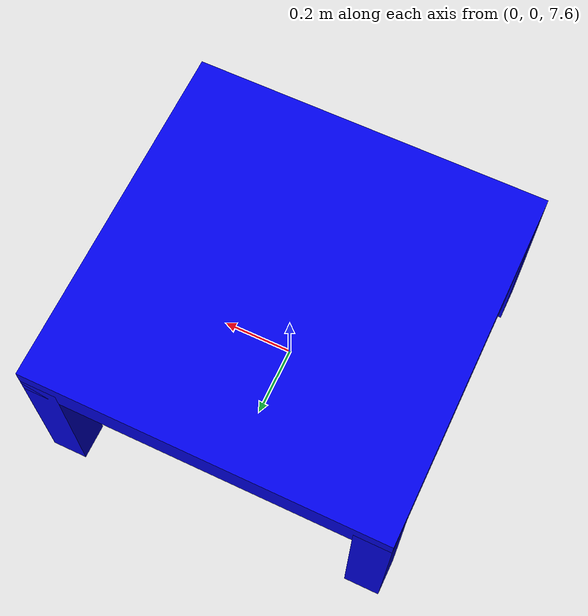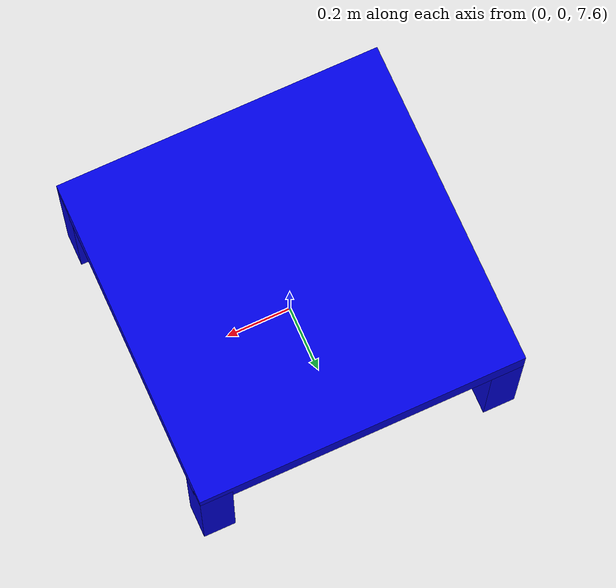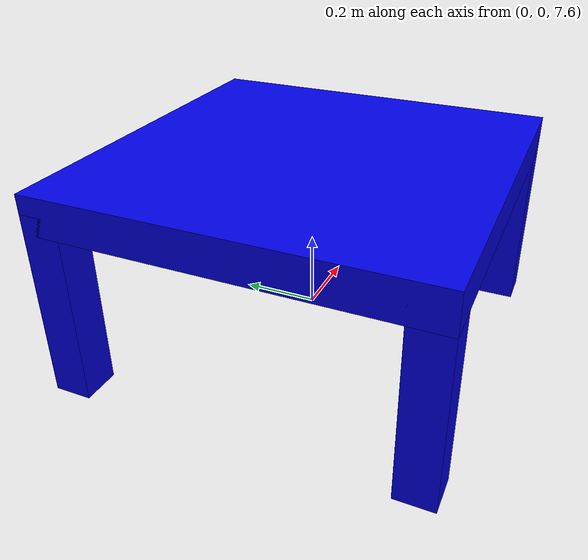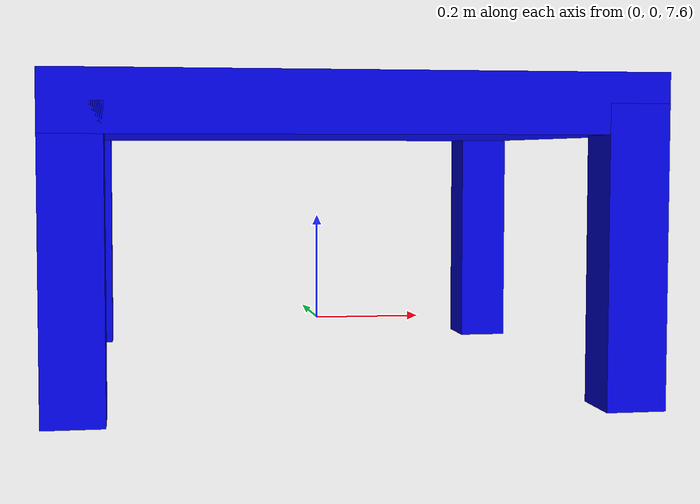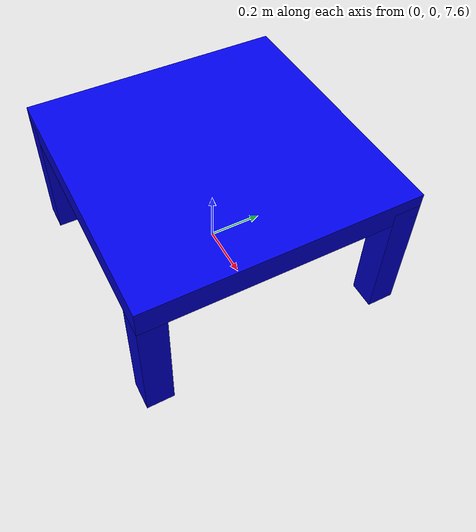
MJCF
<mujoco model="table_simulation">
  <compiler angle="radian" />
  <option timestep="0.001" integrator="RK4">
    <flag contact="disable" energy="enable" />
  </option>
  <size nkey="1" />
  <visual>
    <global azimuth="225" elevation="-30" />
  </visual>
  <asset>
    <texture type="skybox" builtin="gradient" rgb1="1 1 1" rgb2="0.6 0.8 1" width="256" height="1536" />
  </asset>
  <worldbody>
    <body name="table" pos="0 0 8">
      <joint type="free" limited="false" actuatorfrclimited="false" />
      <geom size="0.5 0.5 0.05" type="box" mass="6" rgba="0 0 0.9 1" />
      <geom size="0.05 0.05 0.25" pos="0.45 0.45 -0.25" type="box" mass="1" rgba="0 0 0.9 1" />
      <geom size="0.05 0.05 0.25" pos="0.45 -0.45 -0.25" type="box" mass="1" rgba="0 0 0.9 1" />
      <geom size="0.05 0.05 0.25" pos="-0.45 0.45 -0.25" type="box" mass="1" rgba="0 0 0.9 1" />
      <geom size="0.05 0.05 0.25" pos="-0.45 -0.45 -0.25" type="box" mass="1" rgba="0 0 0.9 1" />
    </body>
  </worldbody>
  <keyframe>
    <key name="home" />
  </keyframe>
  <extension>
    <plugin plugin="mujoco.multiverse_connector">
      <instance name="mujoco_client">
        <config key="host" value="tcp://127.0.0.1" />
        <config key="server_port" value="7000" />
        <config key="client_port" value="7503" />
        <config key="world_name" value="world" />
        <config key="simulation_name" value="table_simulation" />
        <config key="send" value="{'table': ['relative_velocity', 'position', 'quaternion']}" />
        <config key="receive" value="{'table': ['force', 'torque']}" />
      </instance>
    </plugin>
  </extension>
</mujoco>
